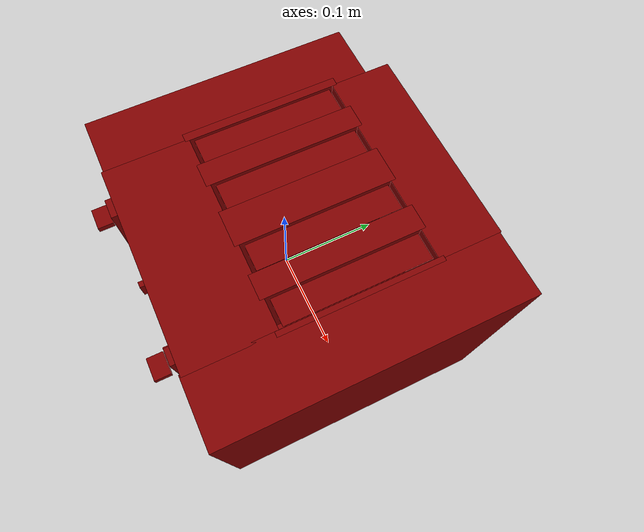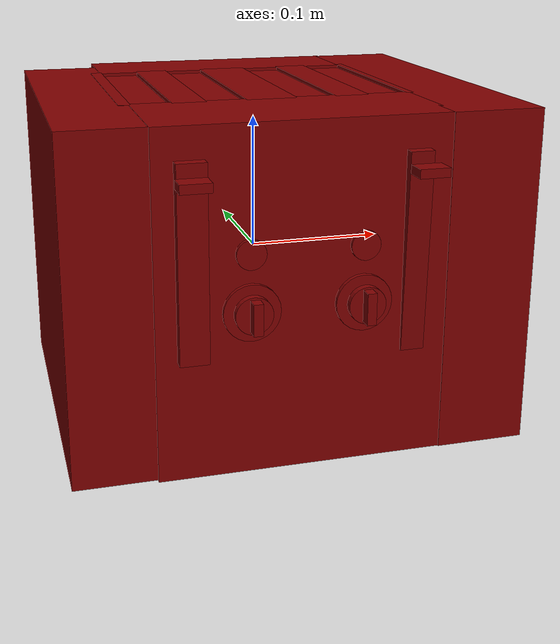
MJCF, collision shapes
<?xml version='1.0' encoding='UTF-8'?>
<mujoco model="model">
  <compiler angle="radian"/>
  <asset>
    <mesh file="visuals/Body001.obj" name="Body001_vis"/>
    <mesh file="visuals/Button001.obj" name="Button001_vis"/>
    <mesh file="visuals/Button002.obj" name="Button002_vis"/>
    <mesh file="visuals/Knob001.obj" name="Knob001_vis"/>
    <mesh file="visuals/Knob002.obj" name="Knob002_vis"/>
    <mesh file="visuals/Lever001.obj" name="Lever001_vis"/>
    <mesh file="visuals/Lever002.obj" name="Lever002_vis"/>
    <texture file="visuals/T_BC001.png" name="Body001_material" type="2d"/>
    <material name="Body001_material" rgba="1 1 1 1.0" texture="Body001_material" shininess="0.4472135901451111" specular="0.3103448502657381"/>
    <texture file="visuals/T_BC001.png" name="Button001_material" type="2d"/>
    <material name="Button001_material" rgba="1 1 1 1.0" texture="Button001_material" shininess="0.4472135901451111" specular="0.3103448502657381"/>
    <texture file="visuals/T_BC001.png" name="Button002_material" type="2d"/>
    <material name="Button002_material" rgba="1 1 1 1.0" texture="Button002_material" shininess="0.4472135901451111" specular="0.3103448502657381"/>
    <texture file="visuals/T_BC001.png" name="Knob001_material" type="2d"/>
    <material name="Knob001_material" rgba="1 1 1 1.0" texture="Knob001_material" shininess="0.4472135901451111" specular="0.3103448502657381"/>
    <texture file="visuals/T_BC001.png" name="Knob002_material" type="2d"/>
    <material name="Knob002_material" rgba="1 1 1 1.0" texture="Knob002_material" shininess="0.4472135901451111" specular="0.3103448502657381"/>
    <texture file="visuals/T_BC001.png" name="Lever001_material" type="2d"/>
    <material name="Lever001_material" rgba="1 1 1 1.0" texture="Lever001_material" shininess="0.4472135901451111" specular="0.3103448502657381"/>
    <texture file="visuals/T_BC001.png" name="Lever002_material" type="2d"/>
    <material name="Lever002_material" rgba="1 1 1 1.0" texture="Lever002_material" shininess="0.4472135901451111" specular="0.3103448502657381"/>
  </asset>
  <default>
    <default class="visual">
      <geom conaffinity="0" contype="0" group="1" type="mesh"/>
    </default>
    <default class="collision">
      <geom group="0" rgba="0.5 0 0 0.5"/>
    </default>
    <default class="spawn">
      <geom group="0" rgba="1 1 1 0.5" contype="0" conaffinity="0"/>
      <site group="0" rgba="1 1 1 0.5"/>
    </default>
    <default class="region">
      <geom group="1" conaffinity="0" contype="0" rgba="0 1 0 0"/>
    </default>
  </default>
  <worldbody>
    <body>
      <body name="object">
        <geom mesh="Body001_vis" type="mesh" solimp="0.998 0.998 0.001" solref="0.001 1" density="100" friction="0.95 0.3 0.1" class="visual" material="Body001_material"/>
        <geom class="collision" type="box" pos="0.000626 -0.092688 0.001729" size="0.042354900389909744 0.10200190544128418 0.12018764019012451" quat="0.7071055173873901 0.0 0.0 -0.7071080803871155"/>
        <geom class="collision" type="box" pos="0.000627 0.128239 0.001729" size="0.030755188316106796 0.10174465924501419 0.12018764019012451" quat="0.7071055173873901 0.0 0.0 -0.7071080803871155"/>
        <geom class="collision" type="box" pos="0.121931 -0.076474 -0.118610" size="0.031834010034799576 0.03148943930864334 0.0076511637307703495" quat="1.0 0.0 0.0 0.0"/>
        <geom class="collision" type="box" pos="-0.016726 -0.086577 -0.118610" size="0.018773581832647324 0.020808225497603416 0.006321911234408617" quat="1.0 0.0 0.0 0.0"/>
        <geom class="collision" type="box" pos="-0.016726 0.110292 -0.118610" size="0.018773581832647324 0.017574893310666084 0.006321911234408617" quat="1.0 0.0 0.0 0.0"/>
        <geom class="collision" type="box" pos="-0.125247 -0.075352 -0.118610" size="0.031834010034799576 0.03148943930864334 0.0076511637307703495" quat="7.549790126404332e-08 -1.0 0.0 0.0"/>
        <geom class="collision" type="box" pos="0.121457 0.101024 -0.118610" size="0.031834010034799576 0.03148943930864334 0.0076511637307703495" quat="7.549790126404332e-08 -0.0 -1.0 -0.0"/>
        <geom class="collision" type="box" pos="-0.125721 0.099902 -0.118610" size="0.031834010034799576 0.03148943930864334 0.0076511637307703495" quat="7.549790126404332e-08 0.0 0.0 -1.0"/>
        <geom class="collision" type="box" pos="-0.000579 0.023990 0.018954" size="0.018281349912285805 0.07838132232427597 0.10296288132667542" quat="1.982846470127697e-06 0.0 0.0 1.0"/>
        <geom class="collision" type="box" pos="0.000409 0.023990 -0.042177" size="0.1041962057352066 0.07838130742311478 0.07538892328739166" quat="1.982846470127697e-06 0.0 0.0 1.0"/>
        <geom class="collision" type="box" pos="-0.104170 0.023990 0.018954" size="0.004292401485145092 0.07838135212659836 0.10296288132667542" quat="1.982846470127697e-06 0.0 0.0 1.0"/>
        <geom class="collision" type="box" pos="-0.059503 0.023990 0.018954" size="0.012137970887124538 0.07838132977485657 0.10296288132667542" quat="1.982846470127697e-06 0.0 0.0 1.0"/>
        <geom class="collision" type="box" pos="0.058732 0.023990 0.018954" size="0.01233578659594059 0.07838135212659836 0.10296288132667542" quat="1.982846470127697e-06 0.0 0.0 1.0"/>
        <geom class="collision" type="box" pos="0.102767 0.023990 0.018954" size="0.002606966532766819 0.07838137447834015 0.10296288132667542" quat="1.982846470127697e-06 0.0 0.0 1.0"/>
        <geom class="collision" type="box" pos="-0.077013 -0.135062 0.033248" size="0.010032578371465206 0.008468946442008018 0.06678107380867004" quat="1.0 0.0 0.0 0.0"/>
        <geom class="collision" type="box" pos="0.132244 0.010788 0.001729" size="0.03220515698194504 0.14674082398414612 0.12018764019012451" quat="1.0 0.0 0.0 0.0"/>
        <geom class="collision" type="cylinder" pos="-0.037455 -0.135375 -0.003027" size="0.019571812823414803 0.003010922810062766" quat="0.7071067094802856 -0.70710688829422 -1.5700925641616852e-16 -1.2790027470567158e-23"/>
        <geom class="collision" type="cylinder" pos="0.039599 -0.135505 -0.003026" size="0.019571812823414803 0.003010922810062766" quat="0.7071067094802856 -0.70710688829422 -1.5700925641616852e-16 -1.2790027470567158e-23"/>
        <geom class="collision" type="box" pos="-0.129687 0.000727 0.002030" size="0.02911638282239437 0.1338164061307907 0.11970527470111847" quat="1.0 0.0 0.0 0.0"/>
        <geom class="collision" type="box" pos="0.075842 -0.130483 0.029217" size="0.008212201297283173 0.009305399842560291 0.06982908397912979" quat="0.9998330473899841 0.01827205903828144 4.057212543912356e-18 -3.0947444720127836e-25"/>
        <body name="Button001">
          <joint axis="0.0 1.0 0.0" pos="-0.038521 -0.138732 0.037649" limited="true" name="Button001_joint" range="0.0 0.002" type="slide" damping="1" frictionloss="1" armature=".01" stiffness="0.05"/>
          <geom mesh="Button001_vis" type="mesh" solimp="0.998 0.998 0.001" solref="0.001 1" density="100" friction="0.95 0.3 0.1" class="visual" material="Button001_material"/>
          <geom class="collision" type="cylinder" pos="-0.038513 -0.139308 0.037321" size="0.010162713006138802 0.00156362762209028" quat="0.7071055173873901 -0.7071080803871155 0.0 0.0"/>
        </body>
        <body name="Button002">
          <joint axis="0.0 1.0 0.0" pos="0.038578 -0.138732 0.037649" limited="true" name="Button002_joint" range="0.0 0.002" type="slide" damping="1" frictionloss="1" armature=".01" stiffness="0.05"/>
          <geom mesh="Button002_vis" type="mesh" solimp="0.998 0.998 0.001" solref="0.001 1" density="100" friction="0.95 0.3 0.1" class="visual" material="Button002_material"/>
          <geom class="collision" type="cylinder" pos="0.039071 -0.139530 0.037586" size="0.010162713006138802 0.00156362762209028" quat="0.7071055173873901 -0.7071080803871155 0.0 0.0"/>
        </body>
        <body name="Knob001">
          <joint axis="0.0 1.0 0.0" pos="-0.037636 -0.143534 -0.002743" limited="true" name="Knob001_joint" range="0.0 5.235987755982989" type="hinge" damping="0.05" armature="0.001"/>
          <geom mesh="Knob001_vis" type="mesh" solimp="0.998 0.998 0.001" solref="0.001 1" density="100" friction="0.95 0.3 0.1" class="visual" material="Knob001_material"/>
          <geom class="collision" type="box" pos="-0.037130 -0.148158 -0.002848" size="0.0033021767158061266 0.004736439324915409 0.010830704122781754" quat="1.0 0.0 0.0 0.0"/>
          <geom class="collision" type="cylinder" pos="-0.037455 -0.141646 -0.003027" size="0.01283847726881504 0.0026723884511739016" quat="0.7071067094802856 -0.70710688829422 -1.5700925641616852e-16 -1.2790027470567158e-23"/>
        </body>
        <body name="Knob002">
          <joint axis="0.0 1.0 0.0" pos="0.039622 -0.143534 -0.002743" limited="true" name="Knob002_joint" range="0.0 5.235987755982989" type="hinge" damping="0.05" armature="0.001"/>
          <geom mesh="Knob002_vis" type="mesh" solimp="0.998 0.998 0.001" solref="0.001 1" density="100" friction="0.95 0.3 0.1" class="visual" material="Knob002_material"/>
          <geom class="collision" type="box" pos="0.039761 -0.148583 -0.002845" size="0.003200124716386199 0.004547515418380499 0.01100858673453331" quat="1.0 0.0 0.0 0.0"/>
          <geom class="collision" type="cylinder" pos="0.040045 -0.141776 -0.003026" size="0.01283847726881504 0.0026723884511739016" quat="0.7071067094802856 -0.70710688829422 -1.5700925641616852e-16 -1.2790027470567158e-23"/>
        </body>
        <body name="Lever001">
          <joint axis="0.0 0.0 -1.0" pos="-0.077951 -0.146081 0.087575" limited="true" name="Lever001_joint" range="0.0 0.085" type="slide" damping="1" frictionloss="1" armature=".01" stiffness="1" springref="-0.8"/>
          <geom mesh="Lever001_vis" type="mesh" solimp="0.998 0.998 0.001" solref="0.001 1" density="100" friction="0.95 0.3 0.1" class="visual" material="Lever001_material"/>
          <geom class="collision" type="box" pos="-0.077692 -0.151616 0.087723" size="0.010466570034623146 0.0074979569762945175 0.003118603490293026" quat="1.0 0.0 0.0 0.0" name="sideL_lever_knob"/>
          <geom class="collision" type="box" pos="-0.032762 0.023838 0.119785" size="0.012999999336898327 0.07004319876432419 0.00024330915766768157" quat="1.0 0.0 0.0 0.0" name="sideL_slotR_floor"/>
          <geom class="collision" type="box" pos="-0.085706 0.023666 0.119785" size="0.012999999336898327 0.07004319876432419 0.00024330915766768157" quat="1.0 0.0 0.0 0.0" name="sideL_slotL_floor"/>
        </body>
        <body name="Lever002">
          <joint axis="0.0 0.0 -1.0" pos="0.077856 -0.146081 0.087575" limited="true" name="Lever002_joint" range="0.0 0.085" type="slide" damping="1" frictionloss="1" armature=".01" stiffness="1" springref="-0.8"/>
          <geom mesh="Lever002_vis" type="mesh" solimp="0.998 0.998 0.001" solref="0.001 1" density="100" friction="0.95 0.3 0.1" class="visual" material="Lever002_material"/>
          <geom class="collision" type="box" pos="0.077373 -0.151616 0.087723" size="0.010466570034623146 0.0074979569762945175 0.003118603490293026" quat="1.0 0.0 0.0 0.0" name="sideR_lever_knob"/>
          <geom class="collision" type="box" pos="0.085710 0.023838 0.119785" size="0.012999999336898327 0.07004319876432419 0.00024330915766768157" quat="1.0 0.0 0.0 0.0" name="sideR_slotR_floor"/>
          <geom class="collision" type="box" pos="0.032277 0.023838 0.119785" size="0.012999999336898327 0.07004319876432419 0.00024330915766768157" quat="1.0 0.0 0.0 0.0" name="sideR_slotL_floor"/>
        </body>
        <geom class="region" name="reg_main" type="box" pos="-5.000000000005e-07 0.0109755 -4.200000000000037e-05" size="0.16882550000000002 0.1485105 0.12621100000000002"/>
      </body>
    </body>
  </worldbody>
  <actuator>
    <motor name="Button001_joint_actuator" joint="Button001_joint" gear="0.1"/>
    <motor name="Button002_joint_actuator" joint="Button002_joint" gear="0.1"/>
    <motor name="Knob001_joint_actuator" joint="Knob001_joint" gear="10"/>
    <motor name="Knob002_joint_actuator" joint="Knob002_joint" gear="10"/>
    <motor name="Lever001_joint_actuator" joint="Lever001_joint" gear="5"/>
    <motor name="Lever002_joint_actuator" joint="Lever002_joint" gear="5"/>
  </actuator>
</mujoco>
